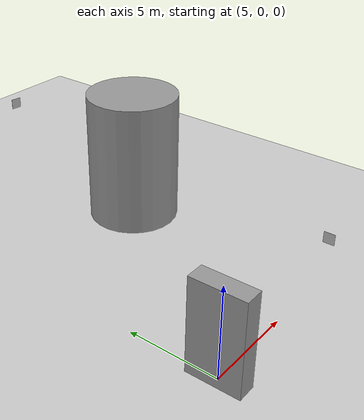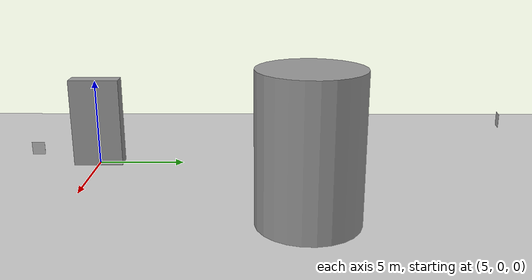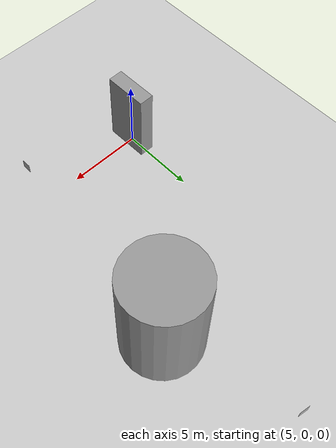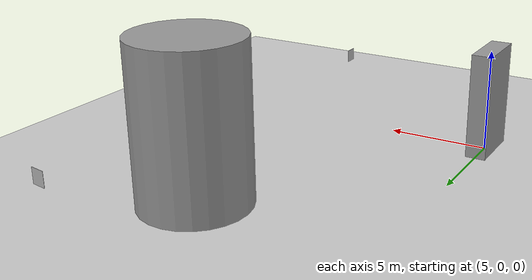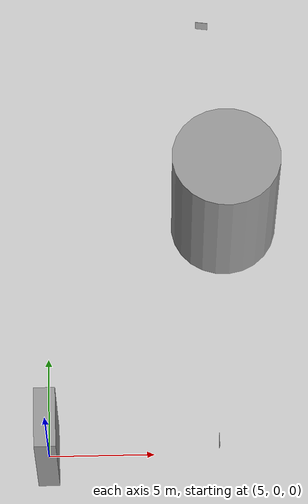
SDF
<sdf version="1.7">
 <world name="default">
  <light name="sun" type="directional">
   <pose>0 0 10 0 -0 0</pose>
   <diffuse>0.8 0.8 0.8 1</diffuse>
   <specular>0.2 0.2 0.2 1</specular>
   <attenuation>
    <range>1000</range>
    <constant>0.9</constant>
    <linear>0.01</linear>
    <quadratic>0.001</quadratic>
   </attenuation>
   <direction>-0.5 0.1 -0.9</direction>
   <spot><inner_angle>0</inner_angle><outer_angle>0</outer_angle><falloff>0</falloff></spot>
  </light>
  <model name="ground_plane">
   <static>1</static>
   <link name="link">
    <collision name="collision">
     <geometry><plane><normal>0 0 1</normal><size>100 100</size></plane></geometry>
     <surface>
      <contact><collide_bitmask>65535</collide_bitmask></contact>
      <friction><ode><mu>100</mu><mu2>50</mu2></ode></friction>
     </surface>
    </collision>
    <visual name="visual">
     <cast_shadows>0</cast_shadows>
     <geometry><plane><normal>0 0 1</normal><size>100 100</size></plane></geometry>
     <material>
      <script><uri>file://media/materials/scripts/gazebo.material</uri><name>Gazebo/Grey</name></script>
     </material>
    </visual>
   </link>
  </model>
  <physics name="default_physics" default="0" type="ode">
   <ode>
    <solver>
     <type>quick</type>
     <iters>10</iters>
     <sor>1.3</sor>
     <use_dynamic_moi_rescaling>0</use_dynamic_moi_rescaling>
    </solver>
    <constraints>
     <cfm>0</cfm>
     <erp>0.2</erp>
     <contact_max_correcting_vel>100</contact_max_correcting_vel>
     <contact_surface_layer>0.001</contact_surface_layer>
    </constraints>
   </ode>
   <max_step_size>0.004</max_step_size>
   <real_time_factor>1</real_time_factor>
   <real_time_update_rate>250</real_time_update_rate>
  </physics>
  <gravity>0 0 -9.8066</gravity>
  <magnetic_field>6e-06 2.3e-05 -4.2e-05</magnetic_field>
  <atmosphere type="adiabatic"/>
  <scene><ambient>0.4 0.4 0.4 1</ambient><background>0.7 0.7 0.7 1</background><shadows>1</shadows></scene>
  <spherical_coordinates>
   <surface_model>EARTH_WGS84</surface_model>
   <latitude_deg>0</latitude_deg>
   <longitude_deg>0</longitude_deg>
   <elevation>0</elevation>
   <heading_deg>0</heading_deg>
  </spherical_coordinates>
  <model name="unit_box">
   <pose>4.99916 -0.000896 2.56566 1.7e-05 7e-06 0.009761</pose>
   <link name="link">
    <inertial>
     <mass>1</mass>
     <inertia>
      <ixx>0.166667</ixx>
      <ixy>0</ixy>
      <ixz>0</ixz>
      <iyy>0.166667</iyy>
      <iyz>0</iyz>
      <izz>0.166667</izz>
     </inertia>
    </inertial>
    <collision name="collision"><geometry><box><size>1 2.88624 5.13148</size></box></geometry></collision>
    <visual name="visual">
     <geometry><box><size>1 2.88624 5.13148</size></box></geometry>
     <material>
      <script><name>Gazebo/Grey</name><uri>file://media/materials/scripts/gazebo.material</uri></script>
     </material>
    </visual>
   </link>
  </model>
  <model name="DICT_ARUCO_ORIGINAL_id1_0">
   <static>1</static>
   <link name="link">
    <visual name="visual">
     <geometry>
      <mesh>
       <uri>model://dict_aruco_original_id1/meshes/DICT_ARUCO_ORIGINAL_id1.dae</uri>
       <scale>1.2 1.2 1.2</scale>
      </mesh>
     </geometry>
    </visual>
   </link>
   <pose>12.7988 20.762 4.58752 0 -0 1.42188</pose>
  </model>
  <model name="DICT_ARUCO_ORIGINAL_id1">
   <static>1</static>
   <link name="link">
    <visual name="visual">
     <geometry>
      <mesh>
       <uri>model://dict_aruco_original_id1/meshes/DICT_ARUCO_ORIGINAL_id1.dae</uri>
       <scale>1.2 1.2 1.2</scale>
      </mesh>
     </geometry>
    </visual>
   </link>
   <pose>12.9828 -0.73529 3.19498 0 -0 0</pose>
  </model>
  <model name="unit_cylinder">
   <pose>13.6738 12.0097 3.7285 3.1e-05 2.8e-05 0.090933</pose>
   <link name="link">
    <inertial>
     <mass>1</mass>
     <inertia><ixx>0.145833</ixx><ixy>0</ixy><ixz>0</ixz><iyy>0.145833</iyy><iyz>0</iyz><izz>0.125</izz></inertia>
    </inertial>
    <collision name="collision">
     <geometry><cylinder><radius>2.57884</radius><length>7.45737</length></cylinder></geometry>
    </collision>
    <visual name="visual">
     <geometry><cylinder><radius>2.57884</radius><length>7.45737</length></cylinder></geometry>
     <material>
      <script><name>Gazebo/Grey</name><uri>file://media/materials/scripts/gazebo.material</uri></script>
     </material>
    </visual>
   </link>
  </model>
 </world>
</sdf>
